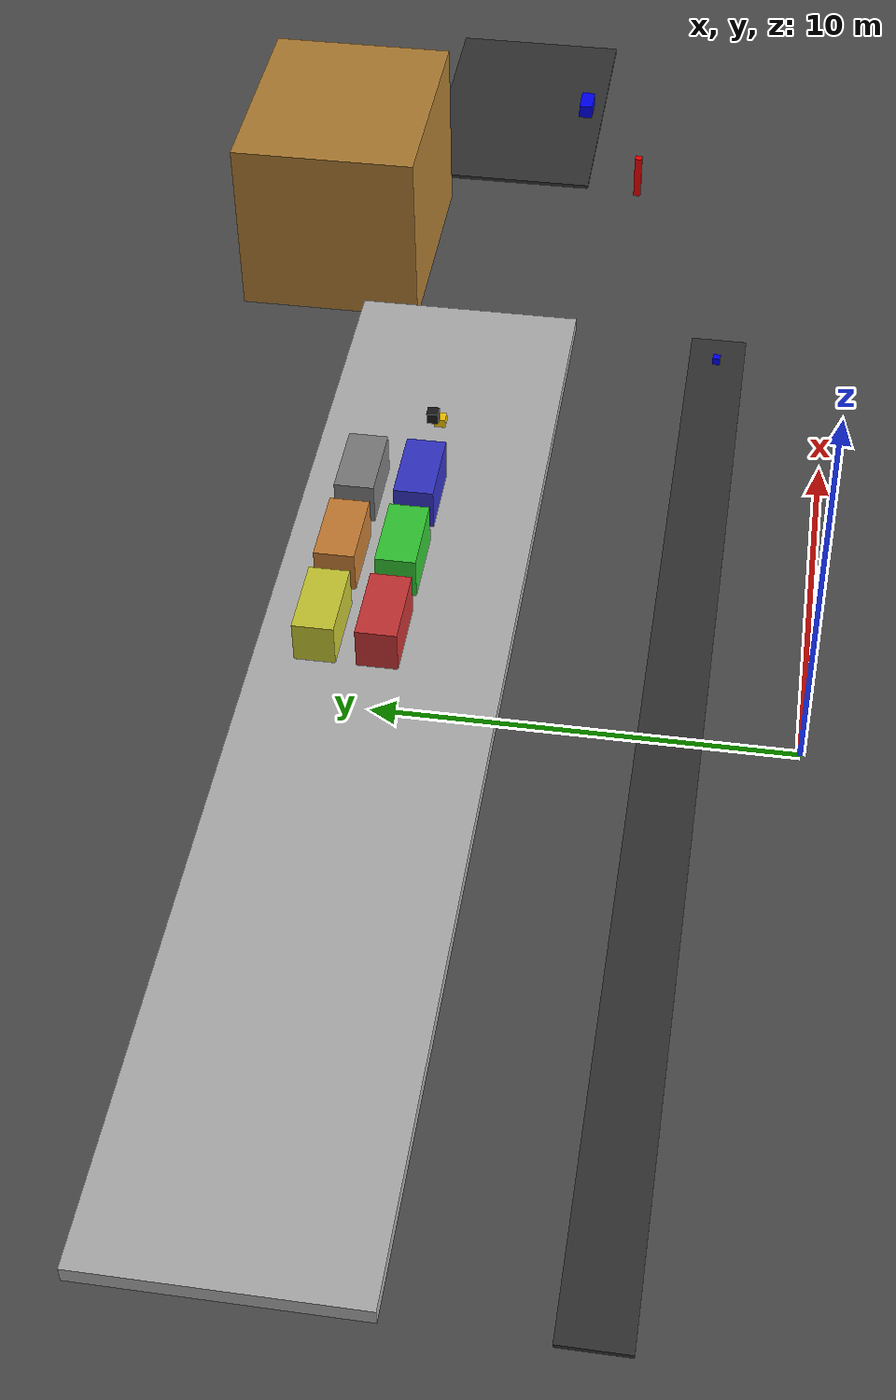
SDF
<?xml version="1.0" ?>
<sdf version="1.7">
  <world name="terminal_tanger_med">
    <light type="directional" name="sun">
      <pose>0 0 10 0 0 0</pose>
      <diffuse>0.9 0.9 0.8 1</diffuse>
      <specular>0.1 0.1 0.1 1</specular>
    </light>

    <!-- Sol -->
    <model name="ground">
      <static>true</static>
      <link name="link">
        <visual name="visual">
          <geometry><plane><normal>0 0 1</normal><size>60 60</size></plane></geometry>
          <material><ambient>0.2 0.2 0.2</ambient><diffuse>0.3 0.3 0.3</diffuse></material>
        </visual>
      </link>
    </model>

    <!-- Quai -->
    <model name="quai"><static>true</static><pose>0 10 0.2 0 0 0</pose>
      <link name="link"><visual name="visual"><geometry><box><size>30 6 0.4</size></box></geometry><material><ambient>0.5 0.5 0.5</ambient><diffuse>0.7 0.7 0.7</diffuse></material></visual></link>
    </model>

    <!-- Conteneurs (6 boîtes) -->
    <model name="container_A1"><static>true</static><pose>2 10 0.5 0 0 0</pose><link name="link"><visual name="visual"><geometry><box><size>2 1 2</size></box></geometry><material><ambient>0.8 0.2 0.2</ambient></material></visual></link></model>
    <model name="container_A2"><static>true</static><pose>4.5 10 0.5 0 0 0</pose><link name="link"><visual name="visual"><geometry><box><size>2 1 2</size></box></geometry><material><ambient>0.2 0.8 0.2</ambient></material></visual></link></model>
    <model name="container_A3"><static>true</static><pose>7 10 0.5 0 0 0</pose><link name="link"><visual name="visual"><geometry><box><size>2 1 2</size></box></geometry><material><ambient>0.2 0.2 0.8</ambient></material></visual></link></model>
    <model name="container_B1"><static>true</static><pose>2 11.5 0.5 0 0 0</pose><link name="link"><visual name="visual"><geometry><box><size>2 1 2</size></box></geometry><material><ambient>0.8 0.8 0.2</ambient></material></visual></link></model>
    <model name="container_B2"><static>true</static><pose>4.5 11.5 0.5 0 0 0</pose><link name="link"><visual name="visual"><geometry><box><size>2 1 2</size></box></geometry><material><ambient>0.8 0.5 0.2</ambient></material></visual></link></model>
    <model name="container_B3"><static>true</static><pose>7 11.5 0.5 0 0 0</pose><link name="link"><visual name="visual"><geometry><box><size>2 1 2</size></box></geometry><material><ambient>0.5 0.5 0.5</ambient></material></visual></link></model>

    <!-- Caméra (boîte) -->
    <model name="camera_Q01"><static>true</static><pose>9 10 1.5 0 0 0</pose>
      <link name="link"><visual name="visual"><geometry><box><size>0.3 0.3 0.3</size></box></geometry><material><ambient>0.1 0.1 0.1</ambient></material></visual></link>
    </model>

    <!-- Route -->
    <model name="route"><static>true</static><pose>0 3 0.05 0 0 0</pose>
      <link name="link"><visual name="visual"><geometry><box><size>30 1.5 0.1</size></box></geometry><material><ambient>0.2 0.2 0.2</ambient></material></visual></link>
    </model>

    <!-- Station humidité (boîte au lieu d'un cylindre) -->
    <model name="humidity_station"><static>true</static><pose>14 3 0.15 0 0 0</pose>
      <link name="link"><visual name="visual"><geometry><box><size>0.2 0.2 0.3</size></box></geometry><material><ambient>0 0 1</ambient></material></visual></link>
    </model>

    <!-- Entrepôt -->
    <model name="warehouse"><static>true</static><pose>18 14 2.5 0 0 0</pose>
      <link name="link"><visual name="visual"><geometry><box><size>6 5 5</size></box></geometry><material><ambient>0.7 0.5 0.2</ambient></material></visual></link>
    </model>

    <!-- Détecteur de fumée (boîte au lieu d'une sphère) -->
    <model name="smoke_detector"><static>true</static><pose>18 14 2.9 0 0 0</pose>
      <link name="link"><visual name="visual"><geometry><box><size>0.3 0.3 0.3</size></box></geometry><material><ambient>1 0.5 0</ambient></material></visual></link>
    </model>

    <!-- Barrière (poteau) -->
    <model name="barrier"><static>true</static><pose>22 6 0.5 0 0 0</pose>
      <link name="link"><visual name="visual"><geometry><box><size>0.2 0.2 1.5</size></box></geometry><material><ambient>1 0 0</ambient></material></visual></link>
    </model>

    <!-- Parking -->
    <model name="parking"><static>true</static><pose>26 10 0.05 0 0 0</pose>
      <link name="link"><visual name="visual"><geometry><box><size>8 5 0.1</size></box></geometry><material><ambient>0.2 0.2 0.2</ambient></material></visual></link>
    </model>

    <!-- Camion GPS -->
    <model name="gps_truck"><static>true</static><pose>26 8 0.4 0 0 0</pose>
      <link name="link"><visual name="visual"><geometry><box><size>0.8 0.4 0.4</size></box></geometry><material><ambient>0 0 1</ambient></material></visual></link>
    </model>

    <!-- Station météo (boîte) -->
    <model name="weather_station"><static>true</static><pose>10 10 0.5 0 0 0</pose>
      <link name="link"><visual name="visual"><geometry><box><size>0.3 0.3 0.3</size></box></geometry><material><ambient>1 0.8 0</ambient></material></visual></link>
    </model>
  </world>
</sdf>
